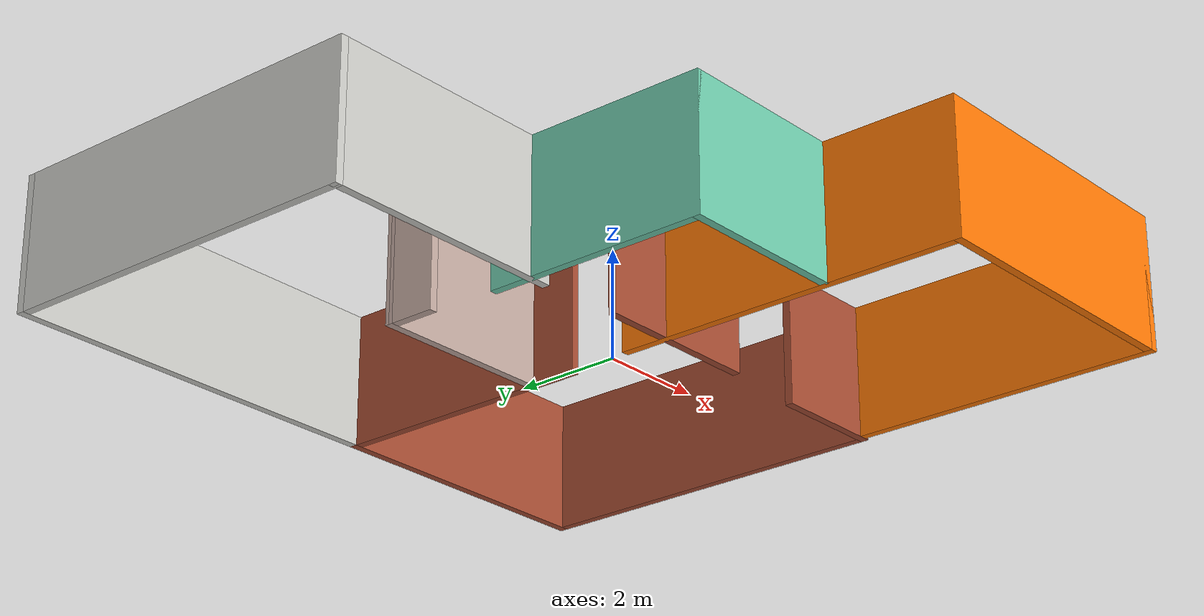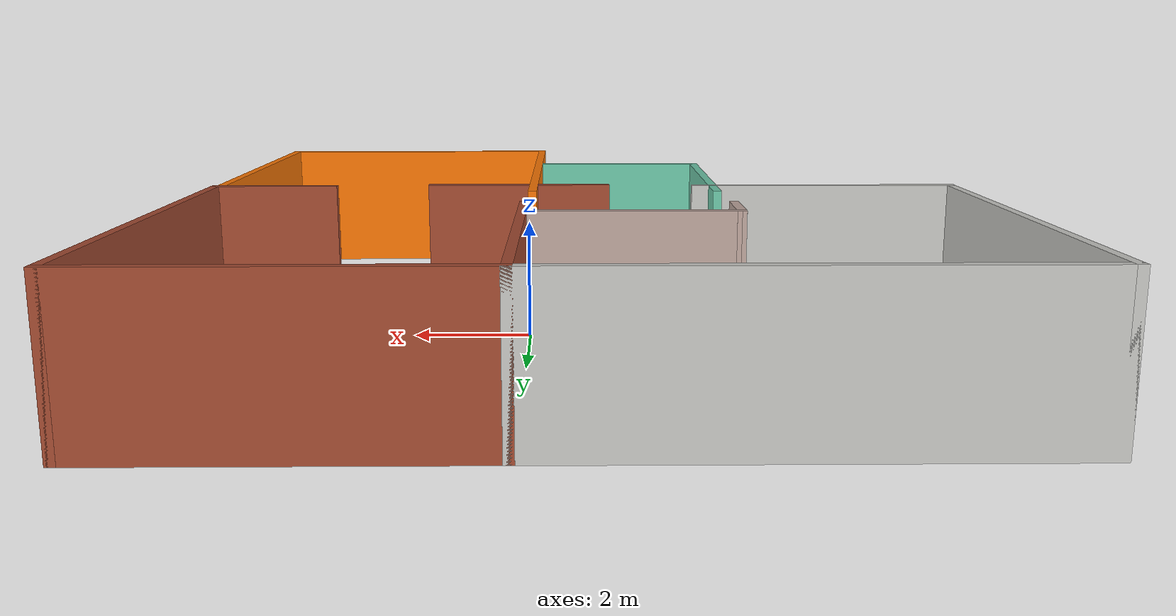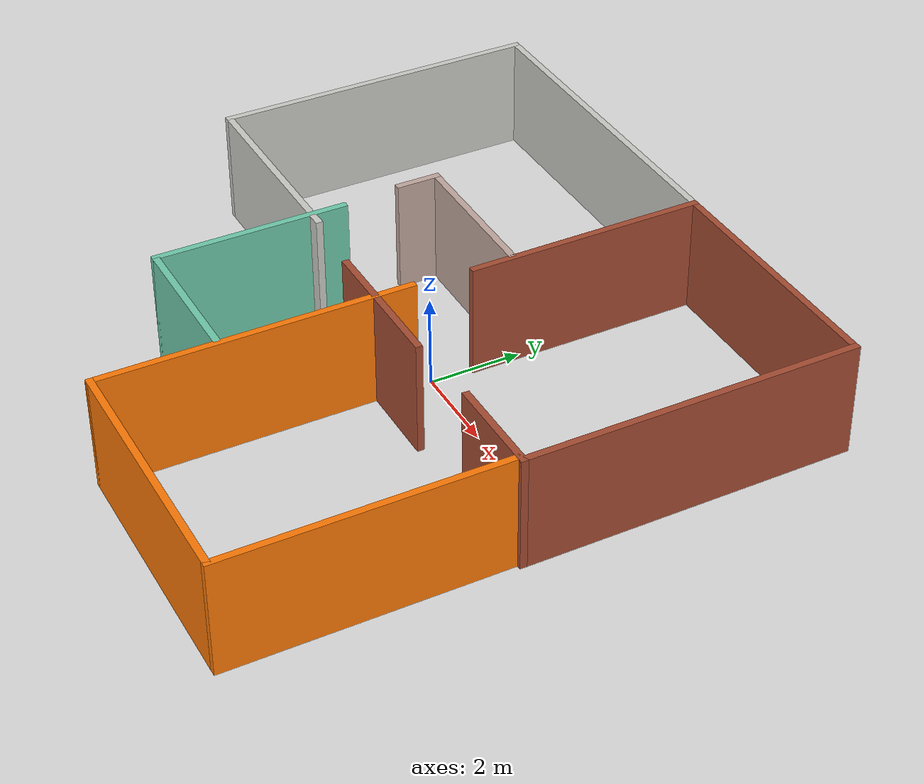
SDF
<?xml version='1.0'?>
<sdf version='1.7'>
  <model name='world'>
    <pose>-0.949194 -0.451041 0 0 -0 0</pose>
    <link name='Wall_0'>
      <collision name='Wall_0_Collision'>
        <geometry>
          <box>
            <size>7.75 0.15 2.5</size>
          </box>
        </geometry>
        <pose>0 0 1.25 0 -0 0</pose>
      </collision>
      <visual name='Wall_0_Visual'>
        <pose>0 0 1.25 0 -0 0</pose>
        <geometry>
          <box>
            <size>7.75 0.15 2.5</size>
          </box>
        </geometry>
        <material>
          <script>
            <uri>file://media/materials/scripts/gazebo.material</uri>
            <name>Gazebo/CeilingTiled</name>
          </script>
          <ambient>1 1 1 1</ambient>
        </material>
        <meta>
          <layer>0</layer>
        </meta>
      </visual>
      <pose>-2.8 6.51251 0 0 -0 0</pose>
    </link>
    <link name='Wall_1'>
      <collision name='Wall_1_Collision'>
        <geometry>
          <box>
            <size>5.25 0.15 2.5</size>
          </box>
        </geometry>
        <pose>0 0 1.25 0 -0 0</pose>
      </collision>
      <visual name='Wall_1_Visual'>
        <pose>0 0 1.25 0 -0 0</pose>
        <geometry>
          <box>
            <size>5.25 0.15 2.5</size>
          </box>
        </geometry>
        <material>
          <script>
            <uri>file://media/materials/scripts/gazebo.material</uri>
            <name>Gazebo/Bricks</name>
          </script>
          <ambient>1 1 1 1</ambient>
        </material>
        <meta>
          <layer>0</layer>
        </meta>
      </visual>
      <pose>1 3.96251 0 0 -0 -1.5708</pose>
    </link>
    <link name='Wall_10'>
      <collision name='Wall_10_Collision'>
        <geometry>
          <box>
            <size>7.25 0.15 2.5</size>
          </box>
        </geometry>
        <pose>0 0 1.25 0 -0 0</pose>
      </collision>
      <visual name='Wall_10_Visual'>
        <pose>0 0 1.25 0 -0 0</pose>
        <geometry>
          <box>
            <size>7.25 0.15 2.5</size>
          </box>
        </geometry>
        <material>
          <script>
            <uri>file://media/materials/scripts/gazebo.material</uri>
            <name>Gazebo/CeilingTiled</name>
          </script>
          <ambient>1 1 1 1</ambient>
        </material>
        <meta>
          <layer>0</layer>
        </meta>
      </visual>
      <pose>-6.6 2.96251 0 0 -0 -1.5708</pose>
    </link>
    <link name='Wall_11'>
      <collision name='Wall_11_Collision'>
        <geometry>
          <box>
            <size>4.75 0.15 2.5</size>
          </box>
        </geometry>
        <pose>0 0 1.25 0 -0 0</pose>
      </collision>
      <visual name='Wall_11_Visual'>
        <pose>0 0 1.25 0 -0 0</pose>
        <geometry>
          <box>
            <size>4.75 0.15 2.5</size>
          </box>
        </geometry>
        <material>
          <script>
            <uri>file://media/materials/scripts/gazebo.material</uri>
            <name>Gazebo/CeilingTiled</name>
          </script>
          <ambient>1 1 1 1</ambient>
        </material>
        <meta>
          <layer>0</layer>
        </meta>
      </visual>
      <pose>-4.3 -0.587486 0 0 -0 0</pose>
    </link>
    <link name='Wall_13'>
      <collision name='Wall_13_Collision'>
        <geometry>
          <box>
            <size>3.25 0.15 2.5</size>
          </box>
        </geometry>
        <pose>0 0 1.25 0 -0 0</pose>
      </collision>
      <visual name='Wall_13_Visual'>
        <pose>0 0 1.25 0 -0 0</pose>
        <geometry>
          <box>
            <size>3.25 0.15 2.5</size>
          </box>
        </geometry>
        <material>
          <script>
            <uri>file://media/materials/scripts/gazebo.material</uri>
            <name>Gazebo/Bricks</name>
          </script>
          <ambient>1 1 1 1</ambient>
        </material>
        <meta>
          <layer>0</layer>
        </meta>
      </visual>
      <pose>1.17546 -0.70786 0 0 -0 0</pose>
    </link>
    <link name='Wall_15'>
      <collision name='Wall_15_Collision'>
        <geometry>
          <box>
            <size>4.25 0.15 2.5</size>
          </box>
        </geometry>
        <pose>0 0 1.25 0 -0 0</pose>
      </collision>
      <visual name='Wall_15_Visual'>
        <pose>0 0 1.25 0 -0 0</pose>
        <geometry>
          <box>
            <size>4.25 0.15 2.5</size>
          </box>
        </geometry>
        <material>
          <script>
            <uri>file://media/materials/scripts/gazebo.material</uri>
            <name>Gazebo/Grey</name>
          </script>
          <ambient>0.435294 0.796078 0.67451 1</ambient>
        </material>
        <meta>
          <layer>0</layer>
        </meta>
      </visual>
      <pose>-2.30172 -1.93192 0 0 -0 -1.5708</pose>
    </link>
    <link name='Wall_16'>
      <collision name='Wall_16_Collision'>
        <geometry>
          <box>
            <size>3.25 0.15 2.5</size>
          </box>
        </geometry>
        <pose>0 0 1.25 0 -0 0</pose>
      </collision>
      <visual name='Wall_16_Visual'>
        <pose>0 0 1.25 0 -0 0</pose>
        <geometry>
          <box>
            <size>3.25 0.15 2.5</size>
          </box>
        </geometry>
        <material>
          <script>
            <uri>file://media/materials/scripts/gazebo.material</uri>
            <name>Gazebo/Grey</name>
          </script>
          <ambient>0.435294 0.796078 0.67451 1</ambient>
        </material>
        <meta>
          <layer>0</layer>
        </meta>
      </visual>
      <pose>-0.751723 -3.98192 0 0 -0 0</pose>
    </link>
    <link name='Wall_19'>
      <collision name='Wall_19_Collision'>
        <geometry>
          <box>
            <size>6.75 0.15 2.5</size>
          </box>
        </geometry>
        <pose>0 0 1.25 0 -0 0</pose>
      </collision>
      <visual name='Wall_19_Visual'>
        <pose>0 0 1.25 0 -0 0</pose>
        <geometry>
          <box>
            <size>6.75 0.15 2.5</size>
          </box>
        </geometry>
        <material>
          <script>
            <uri>file://media/materials/scripts/gazebo.material</uri>
            <name>Gazebo/Grey</name>
          </script>
          <ambient>0.996078 0.47451 0.0196078 1</ambient>
        </material>
        <meta>
          <layer>0</layer>
        </meta>
      </visual>
      <pose>0.910251 -3.21251 0 0 -0 -1.5708</pose>
    </link>
    <link name='Wall_20'>
      <collision name='Wall_20_Collision'>
        <geometry>
          <box>
            <size>5.75 0.15 2.5</size>
          </box>
        </geometry>
        <pose>0 0 1.25 0 -0 0</pose>
      </collision>
      <visual name='Wall_20_Visual'>
        <pose>0 0 1.25 0 -0 0</pose>
        <geometry>
          <box>
            <size>5.75 0.15 2.5</size>
          </box>
        </geometry>
        <material>
          <script>
            <uri>file://media/materials/scripts/gazebo.material</uri>
            <name>Gazebo/Grey</name>
          </script>
          <ambient>0.996078 0.47451 0.0196078 1</ambient>
        </material>
        <meta>
          <layer>0</layer>
        </meta>
      </visual>
      <pose>3.71025 -6.51251 0 0 -0 0</pose>
    </link>
    <link name='Wall_21'>
      <collision name='Wall_21_Collision'>
        <geometry>
          <box>
            <size>6 0.15 2.5</size>
          </box>
        </geometry>
        <pose>0 0 1.25 0 -0 0</pose>
      </collision>
      <visual name='Wall_21_Visual'>
        <pose>0 0 1.25 0 -0 0</pose>
        <geometry>
          <box>
            <size>6 0.15 2.5</size>
          </box>
        </geometry>
        <material>
          <script>
            <uri>file://media/materials/scripts/gazebo.material</uri>
            <name>Gazebo/Grey</name>
          </script>
          <ambient>0.996078 0.47451 0.0196078 1</ambient>
        </material>
        <meta>
          <layer>0</layer>
        </meta>
      </visual>
      <pose>6.51025 -3.58751 0 0 -0 1.5708</pose>
    </link>
    <link name='Wall_3'>
      <collision name='Wall_3_Collision'>
        <geometry>
          <box>
            <size>3.47012 0.15 2.5</size>
          </box>
        </geometry>
        <pose>0 0 1.25 0 -0 0</pose>
      </collision>
      <visual name='Wall_3_Visual'>
        <pose>0 0 1.25 0 -0 0</pose>
        <geometry>
          <box>
            <size>3.47012 0.15 2.5</size>
          </box>
        </geometry>
        <material>
          <script>
            <uri>file://media/materials/scripts/gazebo.material</uri>
            <name>Gazebo/Grey</name>
          </script>
          <ambient>0.760784 0.662745 0.627451 1</ambient>
        </material>
        <meta>
          <layer>0</layer>
        </meta>
      </visual>
      <pose>-0.757636 2.30315 0 0 -0 3.13287</pose>
    </link>
    <link name='Wall_4'>
      <collision name='Wall_4_Collision'>
        <geometry>
          <box>
            <size>1 0.15 2.5</size>
          </box>
        </geometry>
        <pose>0 0 1.25 0 -0 0</pose>
      </collision>
      <visual name='Wall_4_Visual'>
        <pose>0 0 1.25 0 -0 0</pose>
        <geometry>
          <box>
            <size>1 0.15 2.5</size>
          </box>
        </geometry>
        <material>
          <script>
            <uri>file://media/materials/scripts/gazebo.material</uri>
            <name>Gazebo/Grey</name>
          </script>
          <ambient>0.760784 0.662745 0.627451 1</ambient>
        </material>
        <meta>
          <layer>0</layer>
        </meta>
      </visual>
      <pose>-2.41763 1.89263 0 0 -0 -1.5708</pose>
    </link>
    <link name='Wall_6'>
      <collision name='Wall_6_Collision'>
        <geometry>
          <box>
            <size>5.75 0.15 2.5</size>
          </box>
        </geometry>
        <pose>0 0 1.25 0 -0 0</pose>
      </collision>
      <visual name='Wall_6_Visual'>
        <pose>0 0 1.25 0 -0 0</pose>
        <geometry>
          <box>
            <size>5.75 0.15 2.5</size>
          </box>
        </geometry>
        <material>
          <script>
            <uri>file://media/materials/scripts/gazebo.material</uri>
            <name>Gazebo/Bricks</name>
          </script>
          <ambient>1 1 1 1</ambient>
        </material>
        <meta>
          <layer>0</layer>
        </meta>
      </visual>
      <pose>3.8 6.51251 0 0 -0 0</pose>
    </link>
    <link name='Wall_7'>
      <collision name='Wall_7_Collision'>
        <geometry>
          <box>
            <size>7.25 0.15 2.5</size>
          </box>
        </geometry>
        <pose>0 0 1.25 0 -0 0</pose>
      </collision>
      <visual name='Wall_7_Visual'>
        <pose>0 0 1.25 0 -0 0</pose>
        <geometry>
          <box>
            <size>7.25 0.15 2.5</size>
          </box>
        </geometry>
        <material>
          <script>
            <uri>file://media/materials/scripts/gazebo.material</uri>
            <name>Gazebo/Bricks</name>
          </script>
          <ambient>1 1 1 1</ambient>
        </material>
        <meta>
          <layer>0</layer>
        </meta>
      </visual>
      <pose>6.6 2.96251 0 0 -0 -1.5708</pose>
    </link>
    <link name='Wall_8'>
      <collision name='Wall_8_Collision'>
        <geometry>
          <box>
            <size>2.25 0.15 2.5</size>
          </box>
        </geometry>
        <pose>0 0 1.25 0 -0 0</pose>
      </collision>
      <visual name='Wall_8_Visual'>
        <pose>0 0 1.25 0 -0 0</pose>
        <geometry>
          <box>
            <size>2.25 0.15 2.5</size>
          </box>
        </geometry>
        <material>
          <script>
            <uri>file://media/materials/scripts/gazebo.material</uri>
            <name>Gazebo/Bricks</name>
          </script>
          <ambient>1 1 1 1</ambient>
        </material>
        <meta>
          <layer>0</layer>
        </meta>
      </visual>
      <pose>5.55 -0.587486 0 0 -0 3.14159</pose>
    </link>
    <static>1</static>
  </model>
</sdf>
